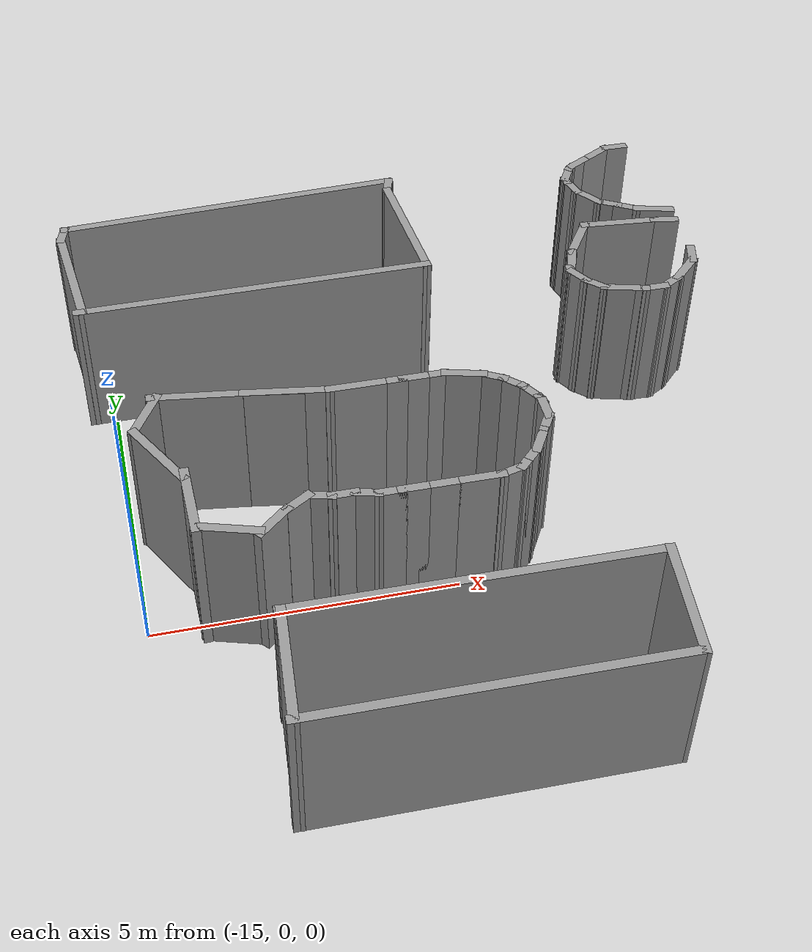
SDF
<sdf version="1.7">
 <model name="complex">
  <pose>10.9367 2.58093 0 0 -0 0</pose>
  <link name="Wall_100">
   <collision name="Wall_100_Collision">
    <geometry><box><size>0.5 0.15 2.5</size></box></geometry>
    <pose>0 0 1.25 0 -0 0</pose>
   </collision>
   <visual name="Wall_100_Visual">
    <pose>0 0 1.25 0 -0 0</pose>
    <geometry><box><size>0.5 0.15 2.5</size></box></geometry>
    <material>
     <script><uri>file://media/materials/scripts/gazebo.material</uri><name>Gazebo/Grey</name></script>
     <ambient>1 1 1 1</ambient>
    </material>
    <meta><layer>0</layer></meta>
   </visual>
   <pose>-19.4502 -0.997037 0 0 -0 2.0944</pose>
  </link>
  <link name="Wall_101">
   <collision name="Wall_101_Collision">
    <geometry><box><size>0.5 0.15 2.5</size></box></geometry>
    <pose>0 0 1.25 0 -0 0</pose>
   </collision>
   <visual name="Wall_101_Visual">
    <pose>0 0 1.25 0 -0 0</pose>
    <geometry><box><size>0.5 0.15 2.5</size></box></geometry>
    <material>
     <script><uri>file://media/materials/scripts/gazebo.material</uri><name>Gazebo/Grey</name></script>
     <ambient>1 1 1 1</ambient>
    </material>
    <meta><layer>0</layer></meta>
   </visual>
   <pose>-19.6614 -0.721739 0 0 -0 2.35619</pose>
  </link>
  <link name="Wall_102">
   <collision name="Wall_102_Collision">
    <geometry><box><size>0.5 0.15 2.5</size></box></geometry>
    <pose>0 0 1.25 0 -0 0</pose>
   </collision>
   <visual name="Wall_102_Visual">
    <pose>0 0 1.25 0 -0 0</pose>
    <geometry><box><size>0.5 0.15 2.5</size></box></geometry>
    <material>
     <script><uri>file://media/materials/scripts/gazebo.material</uri><name>Gazebo/Grey</name></script>
     <ambient>1 1 1 1</ambient>
    </material>
    <meta><layer>0</layer></meta>
   </visual>
   <pose>-19.9367 -0.510496 0 0 -0 2.61799</pose>
  </link>
  <link name="Wall_103">
   <collision name="Wall_103_Collision">
    <geometry><box><size>0.75 0.15 2.5</size></box></geometry>
    <pose>0 0 1.25 0 -0 0</pose>
   </collision>
   <visual name="Wall_103_Visual">
    <pose>0 0 1.25 0 -0 0</pose>
    <geometry><box><size>0.75 0.15 2.5</size></box></geometry>
    <material>
     <script><uri>file://media/materials/scripts/gazebo.material</uri><name>Gazebo/Grey</name></script>
     <ambient>1 1 1 1</ambient>
    </material>
    <meta><layer>0</layer></meta>
   </visual>
   <pose>-20.3781 -0.34535 0 0 -0 2.87979</pose>
  </link>
  <link name="Wall_104">
   <collision name="Wall_104_Collision">
    <geometry><box><size>0.5 0.15 2.5</size></box></geometry>
    <pose>0 0 1.25 0 -0 0</pose>
   </collision>
   <visual name="Wall_104_Visual">
    <pose>0 0 1.25 0 -0 0</pose>
    <geometry><box><size>0.5 0.15 2.5</size></box></geometry>
    <material>
     <script><uri>file://media/materials/scripts/gazebo.material</uri><name>Gazebo/Grey</name></script>
     <ambient>1 1 1 1</ambient>
    </material>
    <meta><layer>0</layer></meta>
   </visual>
   <pose>-20.8428 -0.267704 0 0 -0 3.14159</pose>
  </link>
  <link name="Wall_105">
   <collision name="Wall_105_Collision">
    <geometry><box><size>0.5 0.15 2.5</size></box></geometry>
    <pose>0 0 1.25 0 -0 0</pose>
   </collision>
   <visual name="Wall_105_Visual">
    <pose>0 0 1.25 0 -0 0</pose>
    <geometry><box><size>0.5 0.15 2.5</size></box></geometry>
    <material>
     <script><uri>file://media/materials/scripts/gazebo.material</uri><name>Gazebo/Grey</name></script>
     <ambient>1 1 1 1</ambient>
    </material>
    <meta><layer>0</layer></meta>
   </visual>
   <pose>-21.1928 -0.267704 0 0 -0 3.14159</pose>
  </link>
  <link name="Wall_106">
   <collision name="Wall_106_Collision">
    <geometry><box><size>0.5 0.15 2.5</size></box></geometry>
    <pose>0 0 1.25 0 -0 0</pose>
   </collision>
   <visual name="Wall_106_Visual">
    <pose>0 0 1.25 0 -0 0</pose>
    <geometry><box><size>0.5 0.15 2.5</size></box></geometry>
    <material>
     <script><uri>file://media/materials/scripts/gazebo.material</uri><name>Gazebo/Grey</name></script>
     <ambient>1 1 1 1</ambient>
    </material>
    <meta><layer>0</layer></meta>
   </visual>
   <pose>-21.5428 -0.267704 0 0 -0 3.14159</pose>
  </link>
  <link name="Wall_107">
   <collision name="Wall_107_Collision">
    <geometry><box><size>1 0.15 2.5</size></box></geometry>
    <pose>0 0 1.25 0 -0 0</pose>
   </collision>
   <visual name="Wall_107_Visual">
    <pose>0 0 1.25 0 -0 0</pose>
    <geometry><box><size>1 0.15 2.5</size></box></geometry>
    <material>
     <script><uri>file://media/materials/scripts/gazebo.material</uri><name>Gazebo/Grey</name></script>
     <ambient>1 1 1 1</ambient>
    </material>
    <meta><layer>0</layer></meta>
   </visual>
   <pose>-22.1428 -0.267704 0 0 -0 3.14159</pose>
  </link>
  <link name="Wall_111">
   <collision name="Wall_111_Collision">
    <geometry><box><size>1.61529 0.15 2.5</size></box></geometry>
    <pose>0 0 1.25 0 -0 0</pose>
   </collision>
   <visual name="Wall_111_Visual">
    <pose>0 0 1.25 0 -0 0</pose>
    <geometry><box><size>1.61529 0.15 2.5</size></box></geometry>
    <material>
     <script><uri>file://media/materials/scripts/gazebo.material</uri><name>Gazebo/Grey</name></script>
     <ambient>1 1 1 1</ambient>
    </material>
    <meta><layer>0</layer></meta>
   </visual>
   <pose>-24.648 0.027926 0 0 -0 3.00766</pose>
  </link>
  <link name="Wall_112">
   <collision name="Wall_112_Collision">
    <geometry><box><size>0.15 0.15 2.5</size></box></geometry>
    <pose>0 0 1.25 0 -0 0</pose>
   </collision>
   <visual name="Wall_112_Visual">
    <pose>0 0 1.25 0 -0 0</pose>
    <geometry><box><size>0.15 0.15 2.5</size></box></geometry>
    <material>
     <script><uri>file://media/materials/scripts/gazebo.material</uri><name>Gazebo/Grey</name></script>
     <ambient>1 1 1 1</ambient>
    </material>
    <meta><layer>0</layer></meta>
   </visual>
   <pose>-25.3741 0.125759 0 0 -0 0</pose>
  </link>
  <link name="Wall_113">
   <collision name="Wall_113_Collision">
    <geometry><box><size>1 0.15 2.5</size></box></geometry>
    <pose>0 0 1.25 0 -0 0</pose>
   </collision>
   <visual name="Wall_113_Visual">
    <pose>0 0 1.25 0 -0 0</pose>
    <geometry><box><size>1 0.15 2.5</size></box></geometry>
    <material>
     <script><uri>file://media/materials/scripts/gazebo.material</uri><name>Gazebo/Grey</name></script>
     <ambient>1 1 1 1</ambient>
    </material>
    <meta><layer>0</layer></meta>
   </visual>
   <pose>-25.494 -0.242301 0 0 -0 -2.0944</pose>
  </link>
  <link name="Wall_114">
   <collision name="Wall_114_Collision">
    <geometry><box><size>1.44528 0.15 2.5</size></box></geometry>
    <pose>0 0 1.25 0 -0 0</pose>
   </collision>
   <visual name="Wall_114_Visual">
    <pose>0 0 1.25 0 -0 0</pose>
    <geometry><box><size>1.44528 0.15 2.5</size></box></geometry>
    <material>
     <script><uri>file://media/materials/scripts/gazebo.material</uri><name>Gazebo/Grey</name></script>
     <ambient>1 1 1 1</ambient>
    </material>
    <meta><layer>0</layer></meta>
   </visual>
   <pose>-25.3992 -1.18047 0 0 -0 -1.07646</pose>
  </link>
  <link name="Wall_117">
   <collision name="Wall_117_Collision">
    <geometry><box><size>1.34808 0.15 2.5</size></box></geometry>
    <pose>0 0 1.25 0 -0 0</pose>
   </collision>
   <visual name="Wall_117_Visual">
    <pose>0 0 1.25 0 -0 0</pose>
    <geometry><box><size>1.34808 0.15 2.5</size></box></geometry>
    <material>
     <script><uri>file://media/materials/scripts/gazebo.material</uri><name>Gazebo/Grey</name></script>
     <ambient>1 1 1 1</ambient>
    </material>
    <meta><layer>0</layer></meta>
   </visual>
   <pose>-25.0456 -2.23835 0 0 -0 -1.55537</pose>
  </link>
  <link name="Wall_118">
   <collision name="Wall_118_Collision">
    <geometry><box><size>1.09701 0.15 2.5</size></box></geometry>
    <pose>0 0 1.25 0 -0 0</pose>
   </collision>
   <visual name="Wall_118_Visual">
    <pose>0 0 1.25 0 -0 0</pose>
    <geometry><box><size>1.09701 0.15 2.5</size></box></geometry>
    <material>
     <script><uri>file://media/materials/scripts/gazebo.material</uri><name>Gazebo/Grey</name></script>
     <ambient>1 1 1 1</ambient>
    </material>
    <meta><layer>0</layer></meta>
   </visual>
   <pose>-24.5837 -2.93929 0 0 -0 -0.298026</pose>
  </link>
  <link name="Wall_129">
   <collision name="Wall_129_Collision">
    <geometry><box><size>0.25 0.15 2.5</size></box></geometry>
    <pose>0 0 1.25 0 -0 0</pose>
   </collision>
   <visual name="Wall_129_Visual">
    <pose>0 0 1.25 0 -0 0</pose>
    <geometry><box><size>0.25 0.15 2.5</size></box></geometry>
    <material>
     <script><uri>file://media/materials/scripts/gazebo.material</uri><name>Gazebo/Grey</name></script>
     <ambient>1 1 1 1</ambient>
    </material>
    <meta><layer>0</layer></meta>
   </visual>
   <pose>-17.868 1.93115 0 0 -0 -1.5708</pose>
  </link>
  <link name="Wall_130">
   <collision name="Wall_130_Collision">
    <geometry><box><size>0.5 0.15 2.5</size></box></geometry>
    <pose>0 0 1.25 0 -0 0</pose>
   </collision>
   <visual name="Wall_130_Visual">
    <pose>0 0 1.25 0 -0 0</pose>
    <geometry><box><size>0.5 0.15 2.5</size></box></geometry>
    <material>
     <script><uri>file://media/materials/scripts/gazebo.material</uri><name>Gazebo/Grey</name></script>
     <ambient>1 1 1 1</ambient>
    </material>
    <meta><layer>0</layer></meta>
   </visual>
   <pose>-17.7805 1.72959 0 0 -0 -1.0472</pose>
  </link>
  <link name="Wall_131">
   <collision name="Wall_131_Collision">
    <geometry><box><size>0.5 0.15 2.5</size></box></geometry>
    <pose>0 0 1.25 0 -0 0</pose>
   </collision>
   <visual name="Wall_131_Visual">
    <pose>0 0 1.25 0 -0 0</pose>
    <geometry><box><size>0.5 0.15 2.5</size></box></geometry>
    <material>
     <script><uri>file://media/materials/scripts/gazebo.material</uri><name>Gazebo/Grey</name></script>
     <ambient>1 1 1 1</ambient>
    </material>
    <meta><layer>0</layer></meta>
   </visual>
   <pose>-17.5693 1.45429 0 0 -0 -0.785398</pose>
  </link>
  <link name="Wall_132">
   <collision name="Wall_132_Collision">
    <geometry><box><size>0.75 0.15 2.5</size></box></geometry>
    <pose>0 0 1.25 0 -0 0</pose>
   </collision>
   <visual name="Wall_132_Visual">
    <pose>0 0 1.25 0 -0 0</pose>
    <geometry><box><size>0.75 0.15 2.5</size></box></geometry>
    <material>
     <script><uri>file://media/materials/scripts/gazebo.material</uri><name>Gazebo/Grey</name></script>
     <ambient>1 1 1 1</ambient>
    </material>
    <meta><layer>0</layer></meta>
   </visual>
   <pose>-17.1557 1.2529 0 0 -0 -0.261799</pose>
  </link>
  <link name="Wall_133">
   <collision name="Wall_133_Collision">
    <geometry><box><size>0.25 0.15 2.5</size></box></geometry>
    <pose>0 0 1.25 0 -0 0</pose>
   </collision>
   <visual name="Wall_133_Visual">
    <pose>0 0 1.25 0 -0 0</pose>
    <geometry><box><size>0.25 0.15 2.5</size></box></geometry>
    <material>
     <script><uri>file://media/materials/scripts/gazebo.material</uri><name>Gazebo/Grey</name></script>
     <ambient>1 1 1 1</ambient>
    </material>
    <meta><layer>0</layer></meta>
   </visual>
   <pose>-16.8177 1.16232 0 0 -0 -0.261799</pose>
  </link>
  <link name="Wall_134">
   <collision name="Wall_134_Collision">
    <geometry><box><size>0.5 0.15 2.5</size></box></geometry>
    <pose>0 0 1.25 0 -0 0</pose>
   </collision>
   <visual name="Wall_134_Visual">
    <pose>0 0 1.25 0 -0 0</pose>
    <geometry><box><size>0.5 0.15 2.5</size></box></geometry>
    <material>
     <script><uri>file://media/materials/scripts/gazebo.material</uri><name>Gazebo/Grey</name></script>
     <ambient>1 1 1 1</ambient>
    </material>
    <meta><layer>0</layer></meta>
   </visual>
   <pose>-16.5944 1.14938 0 0 -0 0</pose>
  </link>
  <link name="Wall_135">
   <collision name="Wall_135_Collision">
    <geometry><box><size>0.5 0.15 2.5</size></box></geometry>
    <pose>0 0 1.25 0 -0 0</pose>
   </collision>
   <visual name="Wall_135_Visual">
    <pose>0 0 1.25 0 -0 0</pose>
    <geometry><box><size>0.5 0.15 2.5</size></box></geometry>
    <material>
     <script><uri>file://media/materials/scripts/gazebo.material</uri><name>Gazebo/Grey</name></script>
     <ambient>1 1 1 1</ambient>
    </material>
    <meta><layer>0</layer></meta>
   </visual>
   <pose>-16.2678 1.23688 0 0 -0 0.523599</pose>
  </link>
  <link name="Wall_136">
   <collision name="Wall_136_Collision">
    <geometry><box><size>0.75 0.15 2.5</size></box></geometry>
    <pose>0 0 1.25 0 -0 0</pose>
   </collision>
   <visual name="Wall_136_Visual">
    <pose>0 0 1.25 0 -0 0</pose>
    <geometry><box><size>0.75 0.15 2.5</size></box></geometry>
    <material>
     <script><uri>file://media/materials/scripts/gazebo.material</uri><name>Gazebo/Grey</name></script>
     <ambient>1 1 1 1</ambient>
    </material>
    <meta><layer>0</layer></meta>
   </visual>
   <pose>-15.9041 1.53651 0 0 -0 0.785398</pose>
  </link>
  <link name="Wall_137">
   <collision name="Wall_137_Collision">
    <geometry><box><size>0.5 0.15 2.5</size></box></geometry>
    <pose>0 0 1.25 0 -0 0</pose>
   </collision>
   <visual name="Wall_137_Visual">
    <pose>0 0 1.25 0 -0 0</pose>
    <geometry><box><size>0.5 0.15 2.5</size></box></geometry>
    <material>
     <script><uri>file://media/materials/scripts/gazebo.material</uri><name>Gazebo/Grey</name></script>
     <ambient>1 1 1 1</ambient>
    </material>
    <meta><layer>0</layer></meta>
   </visual>
   <pose>-15.6467 1.91768 0 0 -0 1.309</pose>
  </link>
  <link name="Wall_140">
   <collision name="Wall_140_Collision">
    <geometry><box><size>0.521727 0.15 2.5</size></box></geometry>
    <pose>0 0 1.25 0 -0 0</pose>
   </collision>
   <visual name="Wall_140_Visual">
    <pose>0 0 1.25 0 -0 0</pose>
    <geometry><box><size>0.521727 0.15 2.5</size></box></geometry>
    <material>
     <script><uri>file://media/materials/scripts/gazebo.material</uri><name>Gazebo/Grey</name></script>
     <ambient>1 1 1 1</ambient>
    </material>
    <meta><layer>0</layer></meta>
   </visual>
   <pose>-15.7616 3.0048 0 0 -0 2.97356</pose>
  </link>
  <link name="Wall_144">
   <collision name="Wall_144_Collision">
    <geometry><box><size>0.15 0.15 2.5</size></box></geometry>
    <pose>0 0 1.25 0 -0 0</pose>
   </collision>
   <visual name="Wall_144_Visual">
    <pose>0 0 1.25 0 -0 0</pose>
    <geometry><box><size>0.15 0.15 2.5</size></box></geometry>
    <material>
     <script><uri>file://media/materials/scripts/gazebo.material</uri><name>Gazebo/Grey</name></script>
     <ambient>1 1 1 1</ambient>
    </material>
    <meta><layer>0</layer></meta>
   </visual>
   <pose>-17.223 3.14443 0 0 -0 0</pose>
  </link>
  <link name="Wall_148">
   <collision name="Wall_148_Collision">
    <geometry><box><size>2.29146 0.15 2.5</size></box></geometry>
    <pose>0 0 1.25 0 -0 0</pose>
   </collision>
   <visual name="Wall_148_Visual">
    <pose>0 0 1.25 0 -0 0</pose>
    <geometry><box><size>2.29146 0.15 2.5</size></box></geometry>
    <material>
     <script><uri>file://media/materials/scripts/gazebo.material</uri><name>Gazebo/Grey</name></script>
     <ambient>1 1 1 1</ambient>
    </material>
    <meta><layer>0</layer></meta>
   </visual>
   <pose>-26.3683 3.60126 0 0 -0 -1.46971</pose>
  </link>
  <link name="Wall_149">
   <collision name="Wall_149_Collision">
    <geometry><box><size>6.21671 0.15 2.5</size></box></geometry>
    <pose>0 0 1.25 0 -0 0</pose>
   </collision>
   <visual name="Wall_149_Visual">
    <pose>0 0 1.25 0 -0 0</pose>
    <geometry><box><size>6.21671 0.15 2.5</size></box></geometry>
    <material>
     <script><uri>file://media/materials/scripts/gazebo.material</uri><name>Gazebo/Grey</name></script>
     <ambient>1 1 1 1</ambient>
    </material>
    <meta><layer>0</layer></meta>
   </visual>
   <pose>-23.3136 2.57922 0 0 -0 0.014249</pose>
  </link>
  <link name="Wall_150">
   <collision name="Wall_150_Collision">
    <geometry><box><size>2.51228 0.15 2.5</size></box></geometry>
    <pose>0 0 1.25 0 -0 0</pose>
   </collision>
   <visual name="Wall_150_Visual">
    <pose>0 0 1.25 0 -0 0</pose>
    <geometry><box><size>2.51228 0.15 2.5</size></box></geometry>
    <material>
     <script><uri>file://media/materials/scripts/gazebo.material</uri><name>Gazebo/Grey</name></script>
     <ambient>1 1 1 1</ambient>
    </material>
    <meta><layer>0</layer></meta>
   </visual>
   <pose>-20.367 3.80041 0 0 -0 1.64404</pose>
  </link>
  <link name="Wall_151">
   <collision name="Wall_151_Collision">
    <geometry><box><size>6.18095 0.15 2.5</size></box></geometry>
    <pose>0 0 1.25 0 -0 0</pose>
   </collision>
   <visual name="Wall_151_Visual">
    <pose>0 0 1.25 0 -0 0</pose>
    <geometry><box><size>6.18095 0.15 2.5</size></box></geometry>
    <material>
     <script><uri>file://media/materials/scripts/gazebo.material</uri><name>Gazebo/Grey</name></script>
     <ambient>1 1 1 1</ambient>
    </material>
    <meta><layer>0</layer></meta>
   </visual>
   <pose>-23.3784 5.12499 0 0 -0 -3.08986</pose>
  </link>
  <link name="Wall_153">
   <collision name="Wall_153_Collision">
    <geometry><box><size>0.5 0.15 2.5</size></box></geometry>
    <pose>0 0 1.25 0 -0 0</pose>
   </collision>
   <visual name="Wall_153_Visual">
    <pose>0 0 1.25 0 -0 0</pose>
    <geometry><box><size>0.5 0.15 2.5</size></box></geometry>
    <material>
     <script><uri>file://media/materials/scripts/gazebo.material</uri><name>Gazebo/Grey</name></script>
     <ambient>1 1 1 1</ambient>
    </material>
    <meta><layer>0</layer></meta>
   </visual>
   <pose>-16.5787 3.70528 0 0 -0 -0.523599</pose>
  </link>
  <link name="Wall_154">
   <collision name="Wall_154_Collision">
    <geometry><box><size>0.5 0.15 2.5</size></box></geometry>
    <pose>0 0 1.25 0 -0 0</pose>
   </collision>
   <visual name="Wall_154_Visual">
    <pose>0 0 1.25 0 -0 0</pose>
    <geometry><box><size>0.5 0.15 2.5</size></box></geometry>
    <material>
     <script><uri>file://media/materials/scripts/gazebo.material</uri><name>Gazebo/Grey</name></script>
     <ambient>1 1 1 1</ambient>
    </material>
    <meta><layer>0</layer></meta>
   </visual>
   <pose>-16.2756 3.53028 0 0 -0 -0.523599</pose>
  </link>
  <link name="Wall_155">
   <collision name="Wall_155_Collision">
    <geometry><box><size>0.75 0.15 2.5</size></box></geometry>
    <pose>0 0 1.25 0 -0 0</pose>
   </collision>
   <visual name="Wall_155_Visual">
    <pose>0 0 1.25 0 -0 0</pose>
    <geometry><box><size>0.75 0.15 2.5</size></box></geometry>
    <material>
     <script><uri>file://media/materials/scripts/gazebo.material</uri><name>Gazebo/Grey</name></script>
     <ambient>1 1 1 1</ambient>
    </material>
    <meta><layer>0</layer></meta>
   </visual>
   <pose>-15.8343 3.36513 0 0 -0 -0.261799</pose>
  </link>
  <link name="Wall_177">
   <collision name="Wall_177_Collision">
    <geometry><box><size>0.5 0.15 2.5</size></box></geometry>
    <pose>0 0 1.25 0 -0 0</pose>
   </collision>
   <visual name="Wall_177_Visual">
    <pose>0 0 1.25 0 -0 0</pose>
    <geometry><box><size>0.5 0.15 2.5</size></box></geometry>
    <material>
     <script><uri>file://media/materials/scripts/gazebo.material</uri><name>Gazebo/Grey</name></script>
     <ambient>1 1 1 1</ambient>
    </material>
    <meta><layer>0</layer></meta>
   </visual>
   <pose>-15.8729 5.48894 0 0 -0 3.14159</pose>
  </link>
  <link name="Wall_178">
   <collision name="Wall_178_Collision">
    <geometry><box><size>0.75 0.15 2.5</size></box></geometry>
    <pose>0 0 1.25 0 -0 0</pose>
   </collision>
   <visual name="Wall_178_Visual">
    <pose>0 0 1.25 0 -0 0</pose>
    <geometry><box><size>0.75 0.15 2.5</size></box></geometry>
    <material>
     <script><uri>file://media/materials/scripts/gazebo.material</uri><name>Gazebo/Grey</name></script>
     <ambient>1 1 1 1</ambient>
    </material>
    <meta><layer>0</layer></meta>
   </visual>
   <pose>-16.3077 5.33894 0 0 -0 -2.61799</pose>
  </link>
  <link name="Wall_179">
   <collision name="Wall_179_Collision">
    <geometry><box><size>0.5 0.15 2.5</size></box></geometry>
    <pose>0 0 1.25 0 -0 0</pose>
   </collision>
   <visual name="Wall_179_Visual">
    <pose>0 0 1.25 0 -0 0</pose>
    <geometry><box><size>0.5 0.15 2.5</size></box></geometry>
    <material>
     <script><uri>file://media/materials/scripts/gazebo.material</uri><name>Gazebo/Grey</name></script>
     <ambient>1 1 1 1</ambient>
    </material>
    <meta><layer>0</layer></meta>
   </visual>
   <pose>-16.7191 5.10144 0 0 -0 -2.61799</pose>
  </link>
  <link name="Wall_180">
   <collision name="Wall_180_Collision">
    <geometry><box><size>0.25 0.15 2.5</size></box></geometry>
    <pose>0 0 1.25 0 -0 0</pose>
   </collision>
   <visual name="Wall_180_Visual">
    <pose>0 0 1.25 0 -0 0</pose>
    <geometry><box><size>0.25 0.15 2.5</size></box></geometry>
    <material>
     <script><uri>file://media/materials/scripts/gazebo.material</uri><name>Gazebo/Grey</name></script>
     <ambient>1 1 1 1</ambient>
    </material>
    <meta><layer>0</layer></meta>
   </visual>
   <pose>-16.906 4.97859 0 0 -0 -2.35619</pose>
  </link>
  <link name="Wall_181">
   <collision name="Wall_181_Collision">
    <geometry><box><size>0.5 0.15 2.5</size></box></geometry>
    <pose>0 0 1.25 0 -0 0</pose>
   </collision>
   <visual name="Wall_181_Visual">
    <pose>0 0 1.25 0 -0 0</pose>
    <geometry><box><size>0.5 0.15 2.5</size></box></geometry>
    <material>
     <script><uri>file://media/materials/scripts/gazebo.material</uri><name>Gazebo/Grey</name></script>
     <ambient>1 1 1 1</ambient>
    </material>
    <meta><layer>0</layer></meta>
   </visual>
   <pose>-17.0289 4.79168 0 0 -0 -2.0944</pose>
  </link>
  <link name="Wall_182">
   <collision name="Wall_182_Collision">
    <geometry><box><size>0.15 0.15 2.5</size></box></geometry>
    <pose>0 0 1.25 0 -0 0</pose>
   </collision>
   <visual name="Wall_182_Visual">
    <pose>0 0 1.25 0 -0 0</pose>
    <geometry><box><size>0.15 0.15 2.5</size></box></geometry>
    <material>
     <script><uri>file://media/materials/scripts/gazebo.material</uri><name>Gazebo/Grey</name></script>
     <ambient>1 1 1 1</ambient>
    </material>
    <meta><layer>0</layer></meta>
   </visual>
   <pose>-17.1164 4.64012 0 0 -0 0</pose>
  </link>
  <link name="Wall_183">
   <collision name="Wall_183_Collision">
    <geometry><box><size>0.25 0.15 2.5</size></box></geometry>
    <pose>0 0 1.25 0 -0 0</pose>
   </collision>
   <visual name="Wall_183_Visual">
    <pose>0 0 1.25 0 -0 0</pose>
    <geometry><box><size>0.25 0.15 2.5</size></box></geometry>
    <material>
     <script><uri>file://media/materials/scripts/gazebo.material</uri><name>Gazebo/Grey</name></script>
     <ambient>1 1 1 1</ambient>
    </material>
    <meta><layer>0</layer></meta>
   </visual>
   <pose>-17.1164 4.59012 0 0 -0 -1.5708</pose>
  </link>
  <link name="Wall_184">
   <collision name="Wall_184_Collision">
    <geometry><box><size>0.5 0.15 2.5</size></box></geometry>
    <pose>0 0 1.25 0 -0 0</pose>
   </collision>
   <visual name="Wall_184_Visual">
    <pose>0 0 1.25 0 -0 0</pose>
    <geometry><box><size>0.5 0.15 2.5</size></box></geometry>
    <material>
     <script><uri>file://media/materials/scripts/gazebo.material</uri><name>Gazebo/Grey</name></script>
     <ambient>1 1 1 1</ambient>
    </material>
    <meta><layer>0</layer></meta>
   </visual>
   <pose>-17.0711 4.37109 0 0 -0 -1.309</pose>
  </link>
  <link name="Wall_185">
   <collision name="Wall_185_Collision">
    <geometry><box><size>0.654792 0.15 2.5</size></box></geometry>
    <pose>0 0 1.25 0 -0 0</pose>
   </collision>
   <visual name="Wall_185_Visual">
    <pose>0 0 1.25 0 -0 0</pose>
    <geometry><box><size>0.654792 0.15 2.5</size></box></geometry>
    <material>
     <script><uri>file://media/materials/scripts/gazebo.material</uri><name>Gazebo/Grey</name></script>
     <ambient>1 1 1 1</ambient>
    </material>
    <meta><layer>0</layer></meta>
   </visual>
   <pose>-16.878 3.99741 0 0 -0 -0.945479</pose>
  </link>
  <link name="Wall_415">
   <collision name="Wall_415_Collision">
    <geometry><box><size>0.464645 0.15 2.5</size></box></geometry>
    <pose>0 0 1.25 0 -0 0</pose>
   </collision>
   <visual name="Wall_415_Visual">
    <pose>0 0 1.25 0 -0 0</pose>
    <geometry><box><size>0.464645 0.15 2.5</size></box></geometry>
    <material>
     <script><uri>file://media/materials/scripts/gazebo.material</uri><name>Gazebo/Grey</name></script>
     <ambient>1 1 1 1</ambient>
    </material>
    <meta><layer>0</layer></meta>
   </visual>
   <pose>-26.4331 4.81779 0 0 -0 -1.8491</pose>
  </link>
  <link name="Wall_417">
   <collision name="Wall_417_Collision">
    <geometry><box><size>0.464645 0.15 2.5</size></box></geometry>
    <pose>0 0 1.25 0 -0 0</pose>
   </collision>
   <visual name="Wall_417_Visual">
    <pose>0 0 1.25 0 -0 0</pose>
    <geometry><box><size>0.464645 0.15 2.5</size></box></geometry>
    <material>
     <script><uri>file://media/materials/scripts/gazebo.material</uri><name>Gazebo/Grey</name></script>
     <ambient>1 1 1 1</ambient>
    </material>
    <meta><layer>0</layer></meta>
   </visual>
   <pose>-20.4102 5.12965 0 0 -0 -1.8491</pose>
  </link>
  <link name="Wall_419">
   <collision name="Wall_419_Collision">
    <geometry><box><size>1.43279 0.15 2.5</size></box></geometry>
    <pose>0 0 1.25 0 -0 0</pose>
   </collision>
   <visual name="Wall_419_Visual">
    <pose>0 0 1.25 0 -0 0</pose>
    <geometry><box><size>1.43279 0.15 2.5</size></box></geometry>
    <material>
     <script><uri>file://media/materials/scripts/gazebo.material</uri><name>Gazebo/Grey</name></script>
     <ambient>1 1 1 1</ambient>
    </material>
    <meta><layer>0</layer></meta>
   </visual>
   <pose>-16.5839 3.09015 0 0 -0 3.05688</pose>
  </link>
  <link name="Wall_423">
   <collision name="Wall_423_Collision">
    <geometry><box><size>0.15 0.15 2.5</size></box></geometry>
    <pose>0 0 1.25 0 -0 0</pose>
   </collision>
   <visual name="Wall_423_Visual">
    <pose>0 0 1.25 0 -0 0</pose>
    <geometry><box><size>0.15 0.15 2.5</size></box></geometry>
    <material>
     <script><uri>file://media/materials/scripts/gazebo.material</uri><name>Gazebo/Grey</name></script>
     <ambient>1 1 1 1</ambient>
    </material>
    <meta><layer>0</layer></meta>
   </visual>
   <pose>-17.6914 2.41581 0 0 -0 0</pose>
  </link>
  <link name="Wall_429">
   <collision name="Wall_429_Collision">
    <geometry><box><size>0.713069 0.15 2.5</size></box></geometry>
    <pose>0 0 1.25 0 -0 0</pose>
   </collision>
   <visual name="Wall_429_Visual">
    <pose>0 0 1.25 0 -0 0</pose>
    <geometry><box><size>0.713069 0.15 2.5</size></box></geometry>
    <material>
     <script><uri>file://media/materials/scripts/gazebo.material</uri><name>Gazebo/Grey</name></script>
     <ambient>1 1 1 1</ambient>
    </material>
    <meta><layer>0</layer></meta>
   </visual>
   <pose>-17.7797 2.14848 0 0 -0 1.25182</pose>
  </link>
  <link name="Wall_430">
   <collision name="Wall_430_Collision">
    <geometry><box><size>0.15 0.15 2.5</size></box></geometry>
    <pose>0 0 1.25 0 -0 0</pose>
   </collision>
   <visual name="Wall_430_Visual">
    <pose>0 0 1.25 0 -0 0</pose>
    <geometry><box><size>0.15 0.15 2.5</size></box></geometry>
    <material>
     <script><uri>file://media/materials/scripts/gazebo.material</uri><name>Gazebo/Grey</name></script>
     <ambient>1 1 1 1</ambient>
    </material>
    <meta><layer>0</layer></meta>
   </visual>
   <pose>-17.6914 2.41581 0 0 -0 0</pose>
  </link>
  <link name="Wall_431">
   <collision name="Wall_431_Collision">
    <geometry><box><size>1.0162 0.15 2.5</size></box></geometry>
    <pose>0 0 1.25 0 -0 0</pose>
   </collision>
   <visual name="Wall_431_Visual">
    <pose>0 0 1.25 0 -0 0</pose>
    <geometry><box><size>1.0162 0.15 2.5</size></box></geometry>
    <material>
     <script><uri>file://media/materials/scripts/gazebo.material</uri><name>Gazebo/Grey</name></script>
     <ambient>1 1 1 1</ambient>
    </material>
    <meta><layer>0</layer></meta>
   </visual>
   <pose>-17.4572 2.78012 0 0 -0 0.999424</pose>
  </link>
  <link name="Wall_433">
   <collision name="Wall_433_Collision">
    <geometry><box><size>1.05109 0.15 2.5</size></box></geometry>
    <pose>0 0 1.25 0 -0 0</pose>
   </collision>
   <visual name="Wall_433_Visual">
    <pose>0 0 1.25 0 -0 0</pose>
    <geometry><box><size>1.05109 0.15 2.5</size></box></geometry>
    <material>
     <script><uri>file://media/materials/scripts/gazebo.material</uri><name>Gazebo/Grey</name></script>
     <ambient>1 1 1 1</ambient>
    </material>
    <meta><layer>0</layer></meta>
   </visual>
   <pose>-23.4769 -0.140249 0 0 -0 2.98482</pose>
  </link>
  <link name="Wall_434">
   <collision name="Wall_434_Collision">
    <geometry><box><size>1.51849 0.15 2.5</size></box></geometry>
    <pose>0 0 1.25 0 -0 0</pose>
   </collision>
   <visual name="Wall_434_Visual">
    <pose>0 0 1.25 0 -0 0</pose>
    <geometry><box><size>1.51849 0.15 2.5</size></box></geometry>
    <material>
     <script><uri>file://media/materials/scripts/gazebo.material</uri><name>Gazebo/Grey</name></script>
     <ambient>1 1 1 1</ambient>
    </material>
    <meta><layer>0</layer></meta>
   </visual>
   <pose>-23.2449 -0.168805 0 0 -0 -0.145045</pose>
  </link>
  <link name="Wall_77">
   <collision name="Wall_77_Collision">
    <geometry><box><size>5.71511 0.15 2.5</size></box></geometry>
    <pose>0 0 1.25 0 -0 0</pose>
   </collision>
   <visual name="Wall_77_Visual">
    <pose>0 0 1.25 0 -0 0</pose>
    <geometry><box><size>5.71511 0.15 2.5</size></box></geometry>
    <material>
     <script><uri>file://media/materials/scripts/gazebo.material</uri><name>Gazebo/Grey</name></script>
     <ambient>1 1 1 1</ambient>
    </material>
    <meta><layer>0</layer></meta>
   </visual>
   <pose>-21.481 -6.47333 0 0 -0 -0.00887</pose>
  </link>
  <link name="Wall_78">
   <collision name="Wall_78_Collision">
    <geometry><box><size>2.01025 0.15 2.5</size></box></geometry>
    <pose>0 0 1.25 0 -0 0</pose>
   </collision>
   <visual name="Wall_78_Visual">
    <pose>0 0 1.25 0 -0 0</pose>
    <geometry><box><size>2.01025 0.15 2.5</size></box></geometry>
    <material>
     <script><uri>file://media/materials/scripts/gazebo.material</uri><name>Gazebo/Grey</name></script>
     <ambient>1 1 1 1</ambient>
    </material>
    <meta><layer>0</layer></meta>
   </visual>
   <pose>-18.552 -5.57301 0 0 -0 1.46575</pose>
  </link>
  <link name="Wall_79">
   <collision name="Wall_79_Collision">
    <geometry><box><size>5.76311 0.15 2.5</size></box></geometry>
    <pose>0 0 1.25 0 -0 0</pose>
   </collision>
   <visual name="Wall_79_Visual">
    <pose>0 0 1.25 0 -0 0</pose>
    <geometry><box><size>5.76311 0.15 2.5</size></box></geometry>
    <material>
     <script><uri>file://media/materials/scripts/gazebo.material</uri><name>Gazebo/Grey</name></script>
     <ambient>1 1 1 1</ambient>
    </material>
    <meta><layer>0</layer></meta>
   </visual>
   <pose>-21.3099 -4.62333 0 0 -0 3.1328</pose>
  </link>
  <link name="Wall_80">
   <collision name="Wall_80_Collision">
    <geometry><box><size>2.00584 0.15 2.5</size></box></geometry>
    <pose>0 0 1.25 0 -0 0</pose>
   </collision>
   <visual name="Wall_80_Visual">
    <pose>0 0 1.25 0 -0 0</pose>
    <geometry><box><size>2.00584 0.15 2.5</size></box></geometry>
    <material>
     <script><uri>file://media/materials/scripts/gazebo.material</uri><name>Gazebo/Grey</name></script>
     <ambient>1 1 1 1</ambient>
    </material>
    <meta><layer>0</layer></meta>
   </visual>
   <pose>-24.1654 -5.52365 0 0 -0 -1.65012</pose>
  </link>
  <link name="Wall_82">
   <collision name="Wall_82_Collision">
    <geometry><box><size>0.753874 0.15 2.5</size></box></geometry>
    <pose>0 0 1.25 0 -0 0</pose>
   </collision>
   <visual name="Wall_82_Visual">
    <pose>0 0 1.25 0 -0 0</pose>
    <geometry><box><size>0.753874 0.15 2.5</size></box></geometry>
    <material>
     <script><uri>file://media/materials/scripts/gazebo.material</uri><name>Gazebo/Grey</name></script>
     <ambient>1 1 1 1</ambient>
    </material>
    <meta><layer>0</layer></meta>
   </visual>
   <pose>-23.9054 -2.93334 0 0 -0 0.726611</pose>
  </link>
  <link name="Wall_84">
   <collision name="Wall_84_Collision">
    <geometry><box><size>0.559268 0.15 2.5</size></box></geometry>
    <pose>0 0 1.25 0 -0 0</pose>
   </collision>
   <visual name="Wall_84_Visual">
    <pose>0 0 1.25 0 -0 0</pose>
    <geometry><box><size>0.559268 0.15 2.5</size></box></geometry>
    <material>
     <script><uri>file://media/materials/scripts/gazebo.material</uri><name>Gazebo/Grey</name></script>
     <ambient>1 1 1 1</ambient>
    </material>
    <meta><layer>0</layer></meta>
   </visual>
   <pose>-23.4913 -2.62642 0 0 -0 0.572183</pose>
  </link>
  <link name="Wall_85">
   <collision name="Wall_85_Collision">
    <geometry><box><size>0.5 0.15 2.5</size></box></geometry>
    <pose>0 0 1.25 0 -0 0</pose>
   </collision>
   <visual name="Wall_85_Visual">
    <pose>0 0 1.25 0 -0 0</pose>
    <geometry><box><size>0.5 0.15 2.5</size></box></geometry>
    <material>
     <script><uri>file://media/materials/scripts/gazebo.material</uri><name>Gazebo/Grey</name></script>
     <ambient>1 1 1 1</ambient>
    </material>
    <meta><layer>0</layer></meta>
   </visual>
   <pose>-23.1502 -2.56091 0 0 -0 -0.261799</pose>
  </link>
  <link name="Wall_86">
   <collision name="Wall_86_Collision">
    <geometry><box><size>0.5 0.15 2.5</size></box></geometry>
    <pose>0 0 1.25 0 -0 0</pose>
   </collision>
   <visual name="Wall_86_Visual">
    <pose>0 0 1.25 0 -0 0</pose>
    <geometry><box><size>0.5 0.15 2.5</size></box></geometry>
    <material>
     <script><uri>file://media/materials/scripts/gazebo.material</uri><name>Gazebo/Grey</name></script>
     <ambient>1 1 1 1</ambient>
    </material>
    <meta><layer>0</layer></meta>
   </visual>
   <pose>-22.8061 -2.6062 0 0 -0 0</pose>
  </link>
  <link name="Wall_87">
   <collision name="Wall_87_Collision">
    <geometry><box><size>0.5 0.15 2.5</size></box></geometry>
    <pose>0 0 1.25 0 -0 0</pose>
   </collision>
   <visual name="Wall_87_Visual">
    <pose>0 0 1.25 0 -0 0</pose>
    <geometry><box><size>0.5 0.15 2.5</size></box></geometry>
    <material>
     <script><uri>file://media/materials/scripts/gazebo.material</uri><name>Gazebo/Grey</name></script>
     <ambient>1 1 1 1</ambient>
    </material>
    <meta><layer>0</layer></meta>
   </visual>
   <pose>-22.4621 -2.6515 0 0 -0 -0.261799</pose>
  </link>
  <link name="Wall_88">
   <collision name="Wall_88_Collision">
    <geometry><box><size>0.5 0.15 2.5</size></box></geometry>
    <pose>0 0 1.25 0 -0 0</pose>
   </collision>
   <visual name="Wall_88_Visual">
    <pose>0 0 1.25 0 -0 0</pose>
    <geometry><box><size>0.5 0.15 2.5</size></box></geometry>
    <material>
     <script><uri>file://media/materials/scripts/gazebo.material</uri><name>Gazebo/Grey</name></script>
     <ambient>1 1 1 1</ambient>
    </material>
    <meta><layer>0</layer></meta>
   </visual>
   <pose>-22.1181 -2.69679 0 0 -0 0</pose>
  </link>
  <link name="Wall_89">
   <collision name="Wall_89_Collision">
    <geometry><box><size>0.5 0.15 2.5</size></box></geometry>
    <pose>0 0 1.25 0 -0 0</pose>
   </collision>
   <visual name="Wall_89_Visual">
    <pose>0 0 1.25 0 -0 0</pose>
    <geometry><box><size>0.5 0.15 2.5</size></box></geometry>
    <material>
     <script><uri>file://media/materials/scripts/gazebo.material</uri><name>Gazebo/Grey</name></script>
     <ambient>1 1 1 1</ambient>
    </material>
    <meta><layer>0</layer></meta>
   </visual>
   <pose>-21.7681 -2.69679 0 0 -0 0</pose>
  </link>
  <link name="Wall_90">
   <collision name="Wall_90_Collision">
    <geometry><box><size>0.75 0.15 2.5</size></box></geometry>
    <pose>0 0 1.25 0 -0 0</pose>
   </collision>
   <visual name="Wall_90_Visual">
    <pose>0 0 1.25 0 -0 0</pose>
    <geometry><box><size>0.75 0.15 2.5</size></box></geometry>
    <material>
     <script><uri>file://media/materials/scripts/gazebo.material</uri><name>Gazebo/Grey</name></script>
     <ambient>1 1 1 1</ambient>
    </material>
    <meta><layer>0</layer></meta>
   </visual>
   <pose>-21.2931 -2.69679 0 0 -0 0</pose>
  </link>
  <link name="Wall_91">
   <collision name="Wall_91_Collision">
    <geometry><box><size>0.75 0.15 2.5</size></box></geometry>
    <pose>0 0 1.25 0 -0 0</pose>
   </collision>
   <visual name="Wall_91_Visual">
    <pose>0 0 1.25 0 -0 0</pose>
    <geometry><box><size>0.75 0.15 2.5</size></box></geometry>
    <material>
     <script><uri>file://media/materials/scripts/gazebo.material</uri><name>Gazebo/Grey</name></script>
     <ambient>1 1 1 1</ambient>
    </material>
    <meta><layer>0</layer></meta>
   </visual>
   <pose>-20.6931 -2.69679 0 0 -0 0</pose>
  </link>
  <link name="Wall_92">
   <collision name="Wall_92_Collision">
    <geometry><box><size>0.5 0.15 2.5</size></box></geometry>
    <pose>0 0 1.25 0 -0 0</pose>
   </collision>
   <visual name="Wall_92_Visual">
    <pose>0 0 1.25 0 -0 0</pose>
    <geometry><box><size>0.5 0.15 2.5</size></box></geometry>
    <material>
     <script><uri>file://media/materials/scripts/gazebo.material</uri><name>Gazebo/Grey</name></script>
     <ambient>1 1 1 1</ambient>
    </material>
    <meta><layer>0</layer></meta>
   </visual>
   <pose>-20.224 -2.6515 0 0 -0 0.261799</pose>
  </link>
  <link name="Wall_93">
   <collision name="Wall_93_Collision">
    <geometry><box><size>0.25 0.15 2.5</size></box></geometry>
    <pose>0 0 1.25 0 -0 0</pose>
   </collision>
   <visual name="Wall_93_Visual">
    <pose>0 0 1.25 0 -0 0</pose>
    <geometry><box><size>0.25 0.15 2.5</size></box></geometry>
    <material>
     <script><uri>file://media/materials/scripts/gazebo.material</uri><name>Gazebo/Grey</name></script>
     <ambient>1 1 1 1</ambient>
    </material>
    <meta><layer>0</layer></meta>
   </visual>
   <pose>-20.0196 -2.57085 0 0 -0 0.785398</pose>
  </link>
  <link name="Wall_94">
   <collision name="Wall_94_Collision">
    <geometry><box><size>0.5 0.15 2.5</size></box></geometry>
    <pose>0 0 1.25 0 -0 0</pose>
   </collision>
   <visual name="Wall_94_Visual">
    <pose>0 0 1.25 0 -0 0</pose>
    <geometry><box><size>0.5 0.15 2.5</size></box></geometry>
    <material>
     <script><uri>file://media/materials/scripts/gazebo.material</uri><name>Gazebo/Grey</name></script>
     <ambient>1 1 1 1</ambient>
    </material>
    <meta><layer>0</layer></meta>
   </visual>
   <pose>-19.8605 -2.41175 0 0 -0 0.785398</pose>
  </link>
  <link name="Wall_95">
   <collision name="Wall_95_Collision">
    <geometry><box><size>0.5 0.15 2.5</size></box></geometry>
    <pose>0 0 1.25 0 -0 0</pose>
   </collision>
   <visual name="Wall_95_Visual">
    <pose>0 0 1.25 0 -0 0</pose>
    <geometry><box><size>0.5 0.15 2.5</size></box></geometry>
    <material>
     <script><uri>file://media/materials/scripts/gazebo.material</uri><name>Gazebo/Grey</name></script>
     <ambient>1 1 1 1</ambient>
    </material>
    <meta><layer>0</layer></meta>
   </visual>
   <pose>-19.6493 -2.13645 0 0 -0 1.0472</pose>
  </link>
  <link name="Wall_96">
   <collision name="Wall_96_Collision">
    <geometry><box><size>0.25 0.15 2.5</size></box></geometry>
    <pose>0 0 1.25 0 -0 0</pose>
   </collision>
   <visual name="Wall_96_Visual">
    <pose>0 0 1.25 0 -0 0</pose>
    <geometry><box><size>0.25 0.15 2.5</size></box></geometry>
    <material>
     <script><uri>file://media/materials/scripts/gazebo.material</uri><name>Gazebo/Grey</name></script>
     <ambient>1 1 1 1</ambient>
    </material>
    <meta><layer>0</layer></meta>
   </visual>
   <pose>-19.5368 -1.94159 0 0 -0 1.0472</pose>
  </link>
  <link name="Wall_97">
   <collision name="Wall_97_Collision">
    <geometry><box><size>0.5 0.15 2.5</size></box></geometry>
    <pose>0 0 1.25 0 -0 0</pose>
   </collision>
   <visual name="Wall_97_Visual">
    <pose>0 0 1.25 0 -0 0</pose>
    <geometry><box><size>0.5 0.15 2.5</size></box></geometry>
    <material>
     <script><uri>file://media/materials/scripts/gazebo.material</uri><name>Gazebo/Grey</name></script>
     <ambient>1 1 1 1</ambient>
    </material>
    <meta><layer>0</layer></meta>
   </visual>
   <pose>-19.4243 -1.74674 0 0 -0 1.0472</pose>
  </link>
  <link name="Wall_98">
   <collision name="Wall_98_Collision">
    <geometry><box><size>0.5 0.15 2.5</size></box></geometry>
    <pose>0 0 1.25 0 -0 0</pose>
   </collision>
   <visual name="Wall_98_Visual">
    <pose>0 0 1.25 0 -0 0</pose>
    <geometry><box><size>0.5 0.15 2.5</size></box></geometry>
    <material>
     <script><uri>file://media/materials/scripts/gazebo.material</uri><name>Gazebo/Grey</name></script>
     <ambient>1 1 1 1</ambient>
    </material>
    <meta><layer>0</layer></meta>
   </visual>
   <pose>-19.3368 -1.42018 0 0 -0 1.5708</pose>
  </link>
  <link name="Wall_99">
   <collision name="Wall_99_Collision">
    <geometry><box><size>0.25 0.15 2.5</size></box></geometry>
    <pose>0 0 1.25 0 -0 0</pose>
   </collision>
   <visual name="Wall_99_Visual">
    <pose>0 0 1.25 0 -0 0</pose>
    <geometry><box><size>0.25 0.15 2.5</size></box></geometry>
    <material>
     <script><uri>file://media/materials/scripts/gazebo.material</uri><name>Gazebo/Grey</name></script>
     <ambient>1 1 1 1</ambient>
    </material>
    <meta><layer>0</layer></meta>
   </visual>
   <pose>-19.3497 -1.19689 0 0 -0 1.8326</pose>
  </link>
  <static>1</static>
 </model>
</sdf>
